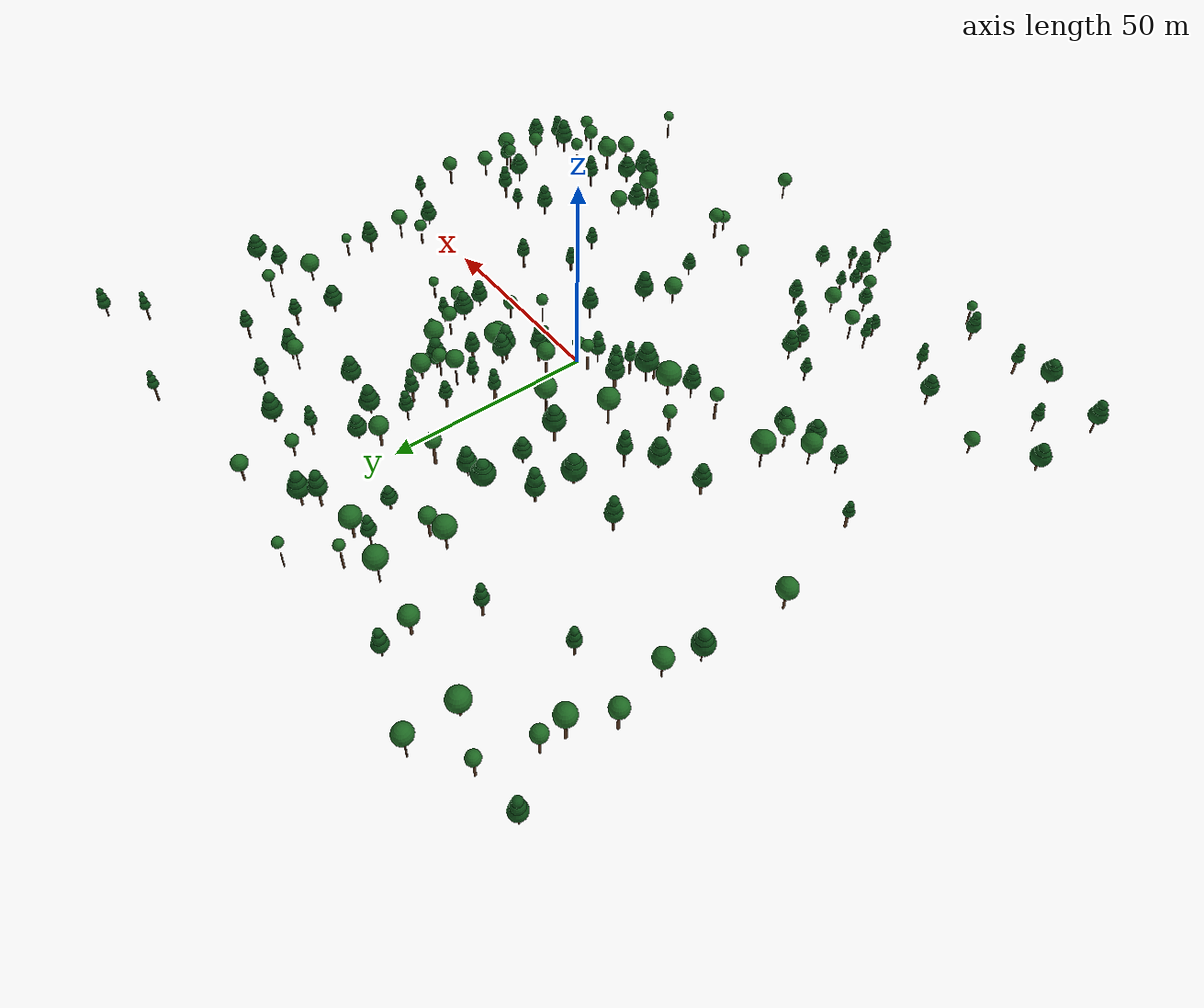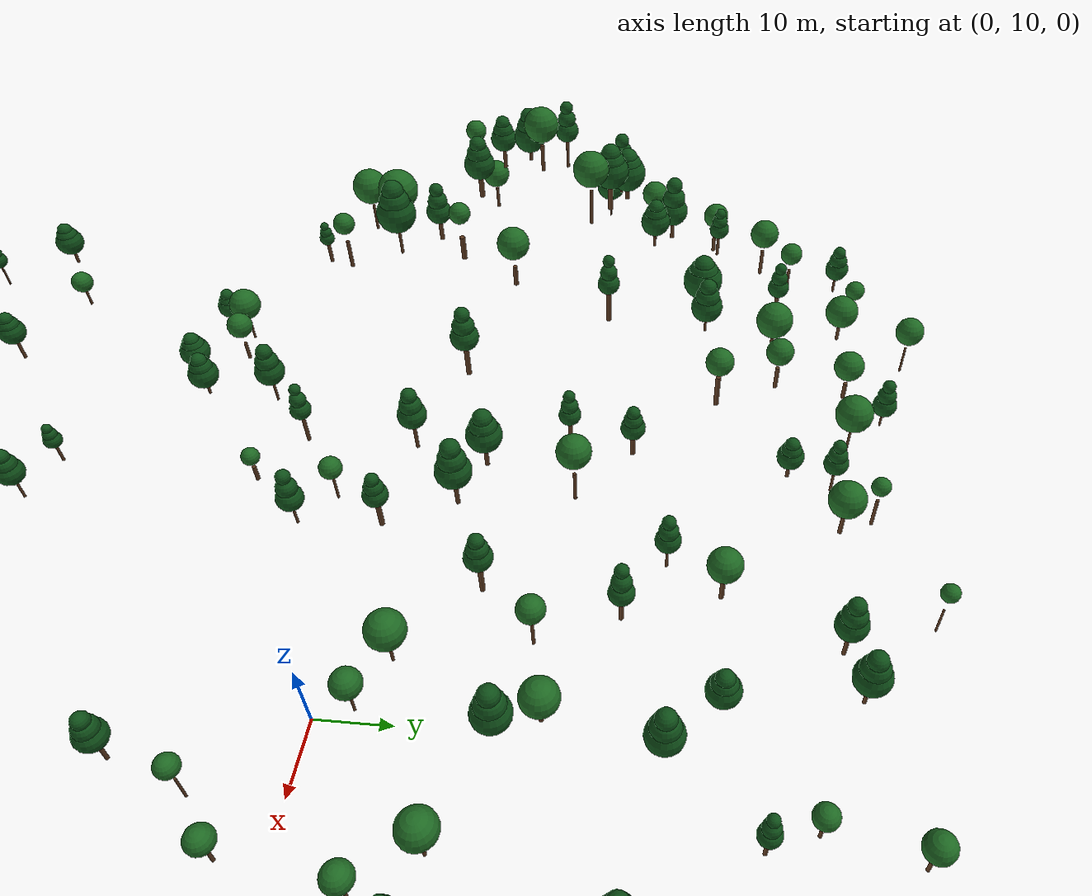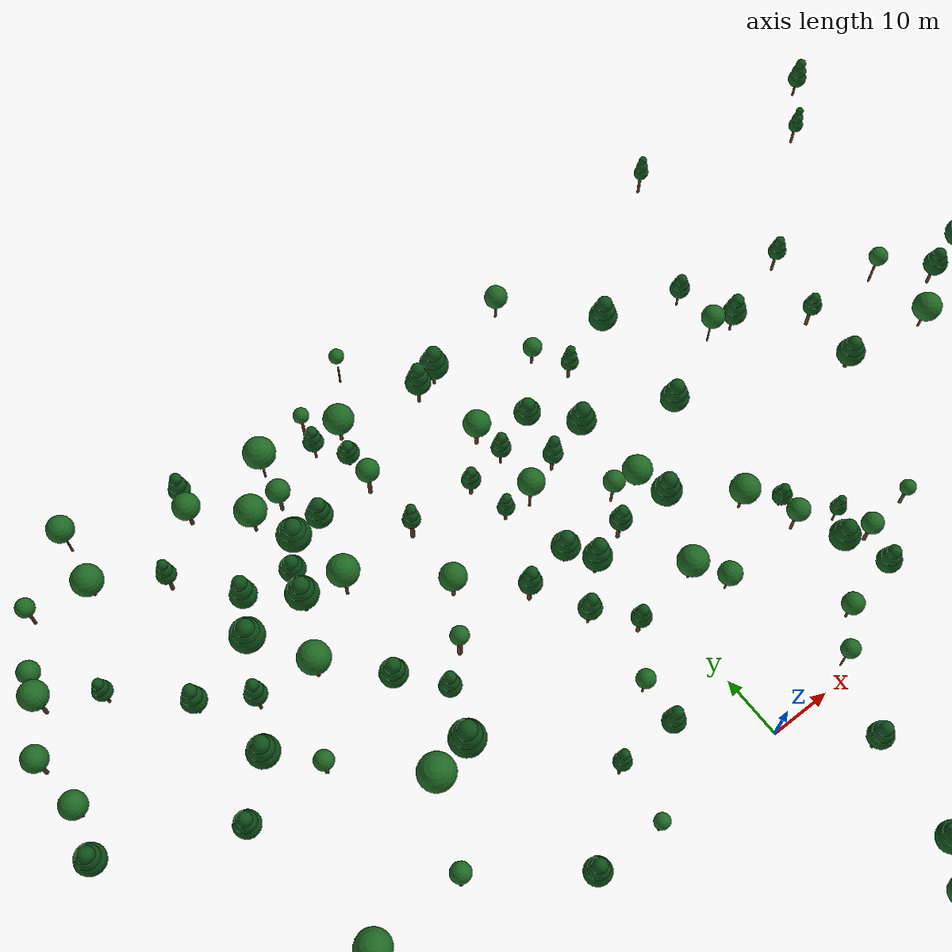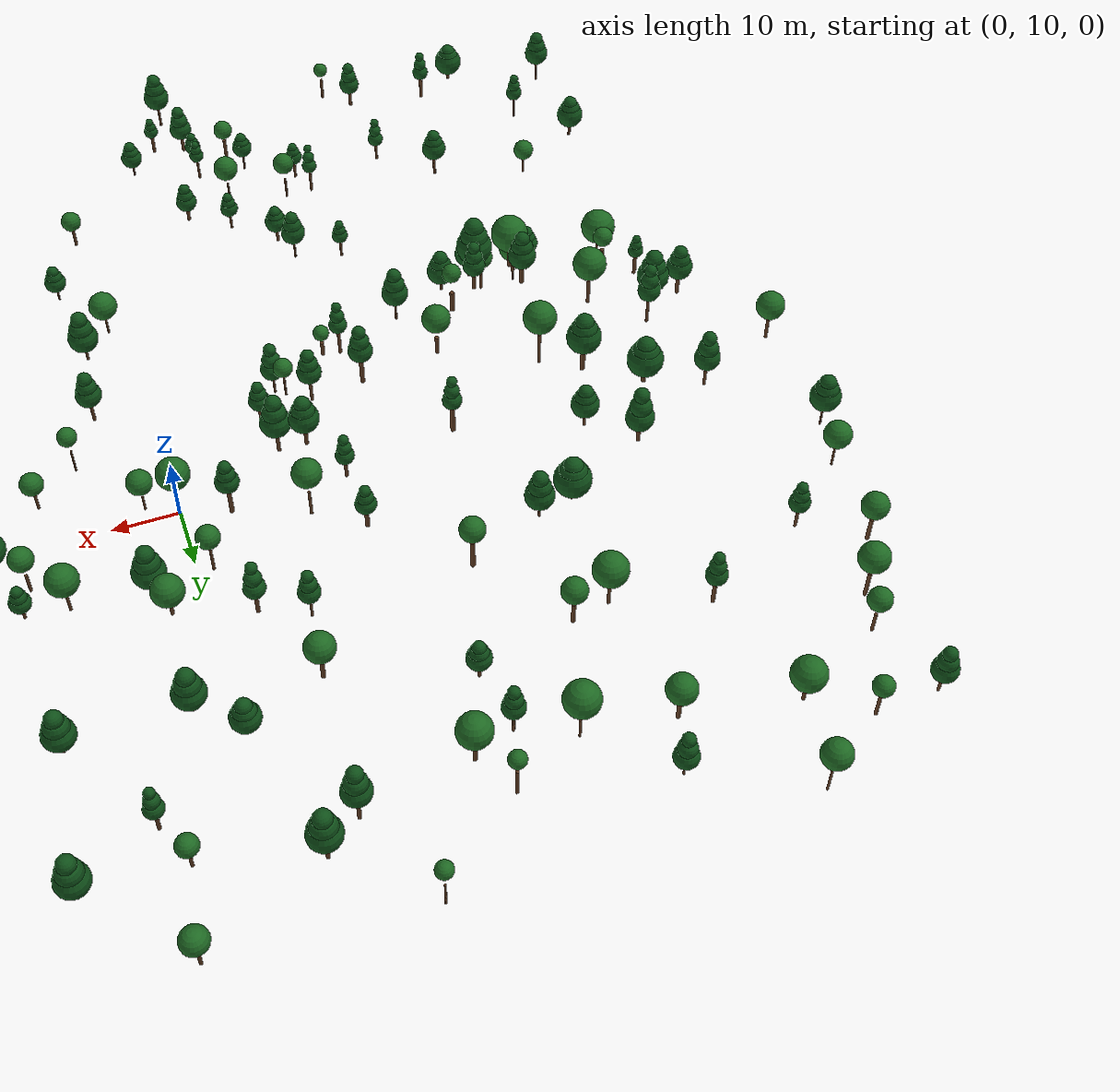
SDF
<sdf version="1.6">
 <world name="ugv_mou_mountain_200m">
  <gravity>0 0 -9.8</gravity>
  <magnetic_field>6.0e-6 2.3e-5 -4.2e-5</magnetic_field>
  <spherical_coordinates>
   <surface_model>EARTH_WGS84</surface_model>
   <latitude_deg>37.6189</latitude_deg>
   <longitude_deg>-122.3750</longitude_deg>
   <elevation>0</elevation>
   <heading_deg>0</heading_deg>
  </spherical_coordinates>
  <physics name="ode_mountain_physics" type="ode">
   <max_step_size>0.001</max_step_size>
   <real_time_factor>1.0</real_time_factor>
   <real_time_update_rate>1000</real_time_update_rate>
   <max_contacts>20</max_contacts>
   <ode>
    <solver><type>quick</type><iters>80</iters><sor>1.30</sor></solver>
    <constraints>
     <cfm>0.0</cfm>
     <erp>0.20</erp>
     <contact_max_correcting_vel>0.2</contact_max_correcting_vel>
     <contact_surface_layer>0.001</contact_surface_layer>
    </constraints>
   </ode>
  </physics>
  <scene>
   <ambient>0.50 0.55 0.58 1</ambient>
   <background>0.58 0.72 0.88 1</background>
   <shadows>true</shadows>
  </scene>
  <light name="mountain_sun" type="directional">
   <pose>-70 -80 120 0 0 0</pose>
   <diffuse>0.96 0.91 0.78 1</diffuse>
   <specular>0.22 0.20 0.18 1</specular>
   <attenuation>
    <range>1000</range>
    <constant>0.9</constant>
    <linear>0.01</linear>
    <quadratic>0.001</quadratic>
   </attenuation>
   <direction>-0.45 0.22 -0.86</direction>
  </light>
  <include><uri>model://ugv_mou_forest_obstacles</uri><name>ugv_mou_forest_obstacles</name></include>
 </world>
</sdf>
